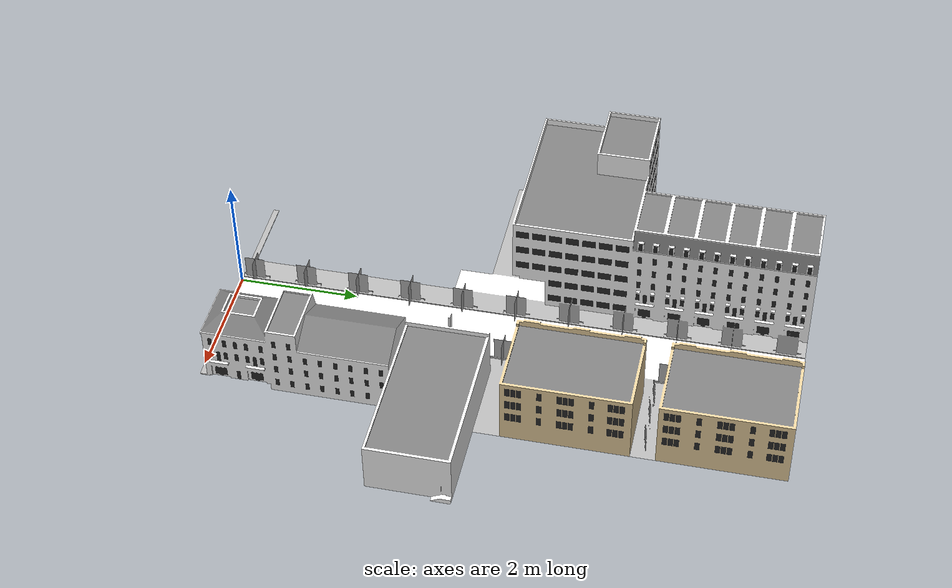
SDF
<?xml version='1.0'?>
<sdf version='1.7'>
  <model name='city1'>
	<static>true</static>
    <link name='link_0'>

		<collision name="collision">
		<geometry>
			<mesh>
				<uri>model://city1/mesh/model.dae</uri>
				<scale>0.00 0.00 0.00</scale>
			</mesh>
		</geometry>
		</collision>

		<visual name="visual">
		<cast_shadows>true</cast_shadows>
		<geometry>
			<mesh>
				<uri>model://city1/mesh/model.dae</uri>
				<scale>0.09 0.09 0.09</scale>
			</mesh>
		</geometry>
		</visual>
    </link>
  </model>
</sdf>
